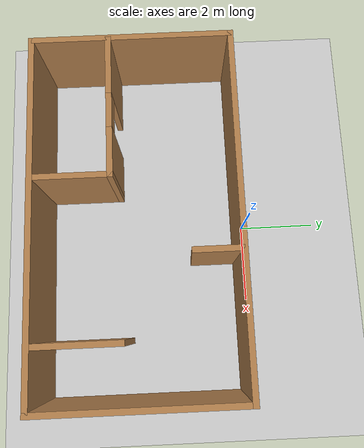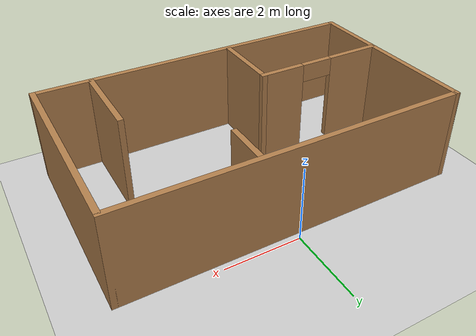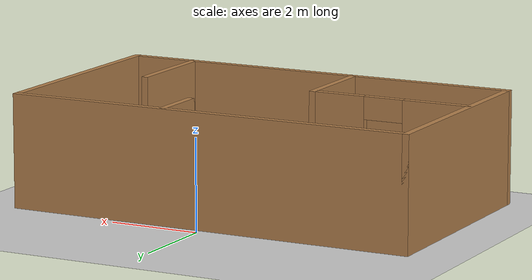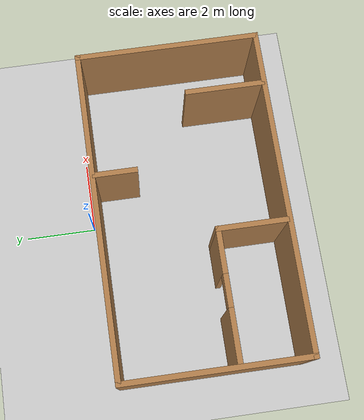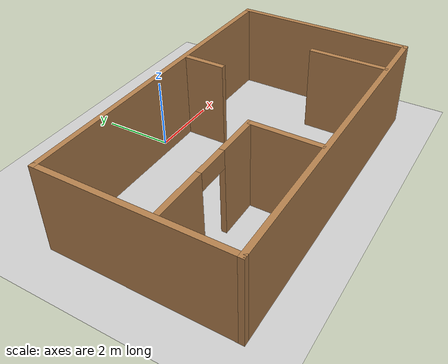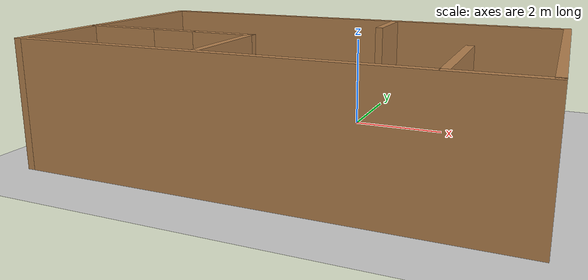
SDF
<sdf version="1.6">
 <world name="default">
  <light name="sun" type="directional">
   <pose>0 0 10 0 -0 0</pose>
   <diffuse>0.8 0.8 0.8 1</diffuse>
   <specular>0.2 0.2 0.2 1</specular>
   <attenuation>
    <range>1000</range>
    <constant>0.9</constant>
    <linear>0.01</linear>
    <quadratic>0.001</quadratic>
   </attenuation>
   <direction>-0.5 0.1 -0.9</direction>
  </light>
  <model name="ground_plane">
   <static>1</static>
   <link name="link">
    <collision name="collision">
     <geometry><plane><normal>0 0 1</normal><size>100 100</size></plane></geometry>
     <surface>
      <contact><collide_bitmask>65535</collide_bitmask></contact>
      <friction><ode><mu>100</mu><mu2>50</mu2></ode></friction>
     </surface>
    </collision>
    <visual name="visual">
     <cast_shadows>0</cast_shadows>
     <geometry><plane><normal>0 0 1</normal><size>100 100</size></plane></geometry>
     <material>
      <script><uri>file://media/materials/scripts/gazebo.material</uri><name>Gazebo/Grey</name></script>
     </material>
    </visual>
   </link>
  </model>
  <gravity>0 0 -9.8</gravity>
  <magnetic_field>6e-06 2.3e-05 -4.2e-05</magnetic_field>
  <atmosphere type="adiabatic"/>
  <physics name="default_physics" default="0" type="ode">
   <max_step_size>0.001</max_step_size>
   <real_time_factor>1</real_time_factor>
   <real_time_update_rate>1000</real_time_update_rate>
  </physics>
  <scene><ambient>0.4 0.4 0.4 1</ambient><background>0.7 0.7 0.7 1</background><shadows>1</shadows></scene>
  <audio><device>default</device></audio>
  <spherical_coordinates>
   <surface_model>EARTH_WGS84</surface_model>
   <latitude_deg>0</latitude_deg>
   <longitude_deg>0</longitude_deg>
   <elevation>0</elevation>
   <heading_deg>0</heading_deg>
  </spherical_coordinates>
  <model name="ex2.model">
   <pose>-0.109204 -2.7826 0 0 -0 0</pose>
   <link name="Wall_0">
    <collision name="Wall_0_Collision">
     <geometry><box><size>9.25 0.15 2.5</size></box></geometry>
     <pose>0 0 1.25 0 -0 0</pose>
    </collision>
    <visual name="Wall_0_Visual">
     <pose>0 0 1.25 0 -0 0</pose>
     <geometry><box><size>9.25 0.15 2.5</size></box></geometry>
     <material>
      <script><uri>file://media/materials/scripts/gazebo.material</uri><name>Gazebo/Wood</name></script>
      <ambient>1 1 1 1</ambient>
     </material>
     <meta><layer>0</layer></meta>
    </visual>
    <pose>-0 2.55 0 0 -0 0</pose>
   </link>
   <link name="Wall_1">
    <collision name="Wall_1_Collision">
     <geometry><box><size>5.25 0.15 2.5</size></box></geometry>
     <pose>0 0 1.25 0 -0 0</pose>
    </collision>
    <visual name="Wall_1_Visual">
     <pose>0 0 1.25 0 -0 0</pose>
     <geometry><box><size>5.25 0.15 2.5</size></box></geometry>
     <material>
      <script><uri>file://media/materials/scripts/gazebo.material</uri><name>Gazebo/Wood</name></script>
      <ambient>1 1 1 1</ambient>
     </material>
     <meta><layer>0</layer></meta>
    </visual>
    <pose>4.55 -0 0 0 -0 -1.5708</pose>
   </link>
   <link name="Wall_10">
    <collision name="Wall_10_Collision">
     <geometry><box><size>2.25 0.15 2.5</size></box></geometry>
     <pose>0 0 1.25 0 -0 0</pose>
    </collision>
    <visual name="Wall_10_Visual">
     <pose>0 0 1.25 0 -0 0</pose>
     <geometry><box><size>2.25 0.15 2.5</size></box></geometry>
     <material>
      <script><uri>file://media/materials/scripts/gazebo.material</uri><name>Gazebo/Wood</name></script>
      <ambient>1 1 1 1</ambient>
     </material>
     <meta><layer>0</layer></meta>
    </visual>
    <pose>3.08479 -1.43529 0 0 -0 -1.5708</pose>
   </link>
   <link name="Wall_2">
    <collision name="Wall_2_Collision">
     <geometry><box><size>9.25 0.15 2.5</size></box></geometry>
     <pose>0 0 1.25 0 -0 0</pose>
    </collision>
    <visual name="Wall_2_Visual">
     <pose>0 0 1.25 0 -0 0</pose>
     <geometry><box><size>9.25 0.15 2.5</size></box></geometry>
     <material>
      <script><uri>file://media/materials/scripts/gazebo.material</uri><name>Gazebo/Wood</name></script>
      <ambient>1 1 1 1</ambient>
     </material>
     <meta><layer>0</layer></meta>
    </visual>
    <pose>-0 -2.55 0 0 -0 3.14159</pose>
   </link>
   <link name="Wall_3">
    <collision name="Wall_3_Collision">
     <geometry><box><size>5.25 0.15 2.5</size></box></geometry>
     <pose>0 0 1.25 0 -0 0</pose>
    </collision>
    <visual name="Wall_3_Visual">
     <pose>0 0 1.25 0 -0 0</pose>
     <geometry><box><size>5.25 0.15 2.5</size></box></geometry>
     <material>
      <script><uri>file://media/materials/scripts/gazebo.material</uri><name>Gazebo/Wood</name></script>
      <ambient>1 1 1 1</ambient>
     </material>
     <meta><layer>0</layer></meta>
    </visual>
    <pose>-4.55 -0 0 0 -0 1.5708</pose>
   </link>
   <link name="Wall_5">
    <pose>-2.70437 -0.598211 0 0 -0 0</pose>
    <visual name="Wall_5_Visual_0">
     <pose>-1.09674 0 1.25 0 -0 0</pose>
     <geometry><box><size>1.55651 0.15 2.5</size></box></geometry>
     <material>
      <script><uri>file://media/materials/scripts/gazebo.material</uri><name>Gazebo/Wood</name></script>
      <ambient>1 1 1 1</ambient>
     </material>
     <meta><layer>0</layer></meta>
    </visual>
    <collision name="Wall_5_Collision_0">
     <geometry><box><size>1.55651 0.15 2.5</size></box></geometry>
     <pose>-1.09674 0 1.25 0 -0 0</pose>
    </collision>
    <visual name="Wall_5_Visual_1">
     <pose>1.22826 0 1.25 0 -0 0</pose>
     <geometry><box><size>1.29349 0.15 2.5</size></box></geometry>
     <material>
      <script><uri>file://media/materials/scripts/gazebo.material</uri><name>Gazebo/Wood</name></script>
      <ambient>1 1 1 1</ambient>
     </material>
     <meta><layer>0</layer></meta>
    </visual>
    <collision name="Wall_5_Collision_1">
     <geometry><box><size>1.29349 0.15 2.5</size></box></geometry>
     <pose>1.22826 0 1.25 0 -0 0</pose>
    </collision>
    <visual name="Wall_5_Visual_2">
     <pose>0.131511 0 2.25 0 -0 0</pose>
     <geometry><box><size>0.9 0.15 0.5</size></box></geometry>
     <material>
      <script><uri>file://media/materials/scripts/gazebo.material</uri><name>Gazebo/Wood</name></script>
      <ambient>1 1 1 1</ambient>
     </material>
     <meta><layer>0</layer></meta>
    </visual>
    <collision name="Wall_5_Collision_2">
     <geometry><box><size>0.9 0.15 0.5</size></box></geometry>
     <pose>0.131511 0 2.25 0 -0 0</pose>
    </collision>
   </link>
   <link name="Wall_6">
    <collision name="Wall_6_Collision">
     <geometry><box><size>2 0.15 2.5</size></box></geometry>
     <pose>0 0 1.25 0 -0 0</pose>
    </collision>
    <visual name="Wall_6_Visual">
     <pose>0 0 1.25 0 -0 0</pose>
     <geometry><box><size>2 0.15 2.5</size></box></geometry>
     <material>
      <script><uri>file://media/materials/scripts/gazebo.material</uri><name>Gazebo/Wood</name></script>
      <ambient>1 1 1 1</ambient>
     </material>
     <meta><layer>0</layer></meta>
    </visual>
    <pose>-0.904374 -1.52321 0 0 -0 -1.5708</pose>
   </link>
   <link name="Wall_8">
    <collision name="Wall_8_Collision">
     <geometry><box><size>1.25 0.15 2.5</size></box></geometry>
     <pose>0 0 1.25 0 -0 0</pose>
    </collision>
    <visual name="Wall_8_Visual">
     <pose>0 0 1.25 0 -0 0</pose>
     <geometry><box><size>1.25 0.15 2.5</size></box></geometry>
     <material>
      <script><uri>file://media/materials/scripts/gazebo.material</uri><name>Gazebo/Wood</name></script>
      <ambient>1 1 1 1</ambient>
     </material>
     <meta><layer>0</layer></meta>
    </visual>
    <pose>1.03161 1.92396 0 0 -0 -1.5708</pose>
   </link>
   <static>1</static>
  </model>
 </world>
</sdf>
